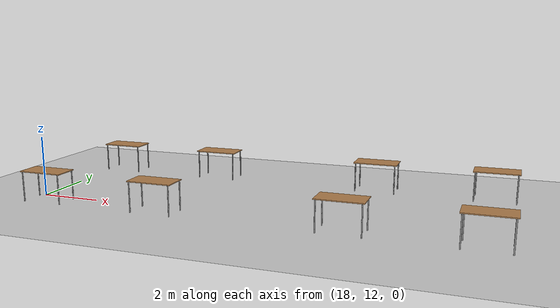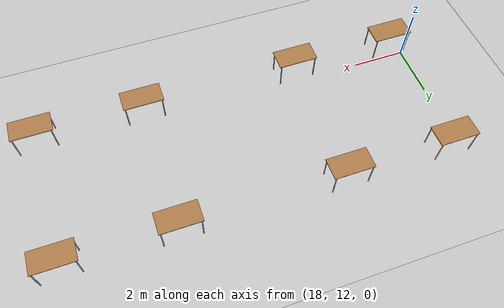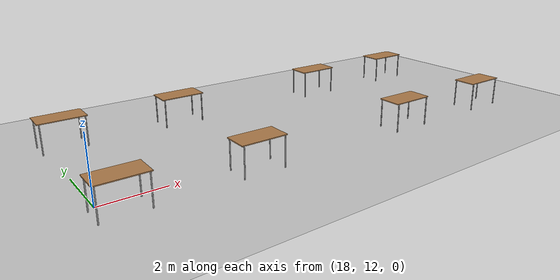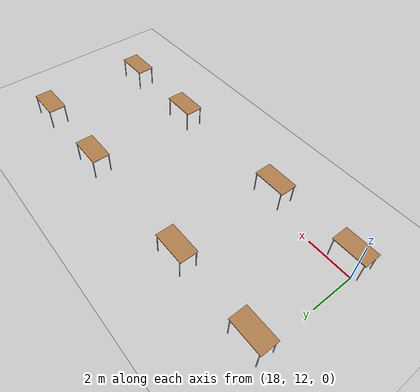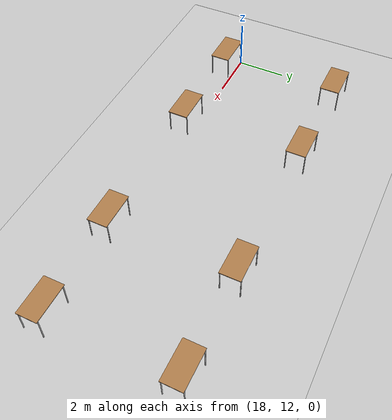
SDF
<sdf version="1.4">
 <world name="default">
  <include><uri>model://ground_plane</uri></include>
  <include><uri>model://sun</uri></include>
  <include><uri>model://table</uri><name>'table00'</name><pose>18.5 16.5 0 0 -0 0</pose></include>
  <include><uri>model://table</uri><name>'table01'</name><pose>22.5 16.5 0 0 -0 0</pose></include>
  <include><uri>model://table</uri><name>'table02'</name><pose>28.5 16.5 0 0 -0 0</pose></include>
  <include><uri>model://table</uri><name>'table03'</name><pose>32.5 16.5 0 0 -0 0</pose></include>
  <include><uri>model://table</uri><name>'table10'</name><pose>18.5 11.5 0 0 -0 0</pose></include>
  <include><uri>model://table</uri><name>'table20'</name><pose>22.5 11.5 0 0 -0 0</pose></include>
  <include><uri>model://table</uri><name>'table30'</name><pose>28.5 11.5 0 0 -0 0</pose></include>
  <include><uri>model://table</uri><name>'table40'</name><pose>32.5 11.5 0 0 -0 0</pose></include>
 </world>
</sdf>

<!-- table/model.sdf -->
<sdf version="1.5">
  <model name="table">
    <static>true</static>
    <link name="link">
      <collision name="surface">
        <pose>0 0 1.0 0 0 0</pose>
        <geometry>
          <box>
            <size>1.5 0.8 0.03</size>
          </box>
        </geometry>
        <surface>
          <friction>
            <ode>
              <mu>0.6</mu>
              <mu2>0.6</mu2>
            </ode>
          </friction>
        </surface>
      </collision>
      <visual name="visual1">
        <pose>0 0 1.0 0 0 0</pose>
        <geometry>
          <box>
            <size>1.5 0.8 0.03</size>
          </box>
        </geometry>
        <material>
          <script>
            <uri>model://media/materials/scripts/gazebo.material</uri>
            <name>Gazebo/Wood</name>
          </script>
        </material>
      </visual>
      <collision name="front_left_leg">
        <pose>0.68 0.38 0.5 0 0 0</pose>
        <geometry>
          <cylinder>
            <radius>0.02</radius>
            <length>1.0</length>
          </cylinder>
        </geometry>
      </collision>
      <visual name="front_left_leg">
        <pose>0.68 0.38 0.5 0 0 0</pose>
        <geometry>
          <cylinder>
            <radius>0.02</radius>
            <length>1.0</length>
          </cylinder>
        </geometry>
        <material>
          <script>
            <uri>model://media/materials/scripts/gazebo.material</uri>
            <name>Gazebo/Grey</name>
          </script>
        </material>
      </visual>
      <collision name="front_right_leg">
        <pose>0.68 -0.38 0.5 0 0 0</pose>
        <geometry>
          <cylinder>
            <radius>0.02</radius>
            <length>1.0</length>
          </cylinder>
        </geometry>
      </collision>
      <visual name="front_right_leg">
        <pose>0.68 -0.38 0.5 0 0 0</pose>
        <geometry>
          <cylinder>
            <radius>0.02</radius>
            <length>1.0</length>
          </cylinder>
        </geometry>
        <material>
          <script>
            <uri>model://media/materials/scripts/gazebo.material</uri>
            <name>Gazebo/Grey</name>
          </script>
        </material>
      </visual>
      <collision name="back_right_leg">
        <pose>-0.68 -0.38 0.5 0 0 0</pose>
        <geometry>
          <cylinder>
            <radius>0.02</radius>
            <length>1.0</length>
          </cylinder>
        </geometry>
      </collision>
      <visual name="back_right_leg">
        <pose>-0.68 -0.38 0.5 0 0 0</pose>
        <geometry>
          <cylinder>
            <radius>0.02</radius>
            <length>1.0</length>
          </cylinder>
        </geometry>
        <material>
          <script>
            <uri>model://media/materials/scripts/gazebo.material</uri>
            <name>Gazebo/Grey</name>
          </script>
        </material>
      </visual>
      <collision name="back_left_leg">
        <pose>-0.68 0.38 0.5 0 0 0</pose>
        <geometry>
          <cylinder>
            <radius>0.02</radius>
            <length>1.0</length>
          </cylinder>
        </geometry>
      </collision>
      <visual name="back_left_leg">
        <pose>-0.68 0.38 0.5 0 0 0</pose>
        <geometry>
          <cylinder>
            <radius>0.02</radius>
            <length>1.0</length>
          </cylinder>
        </geometry>
        <material>
          <script>
            <uri>model://media/materials/scripts/gazebo.material</uri>
            <name>Gazebo/Grey</name>
          </script>
        </material>
      </visual>
    </link>
  </model>
</sdf>
